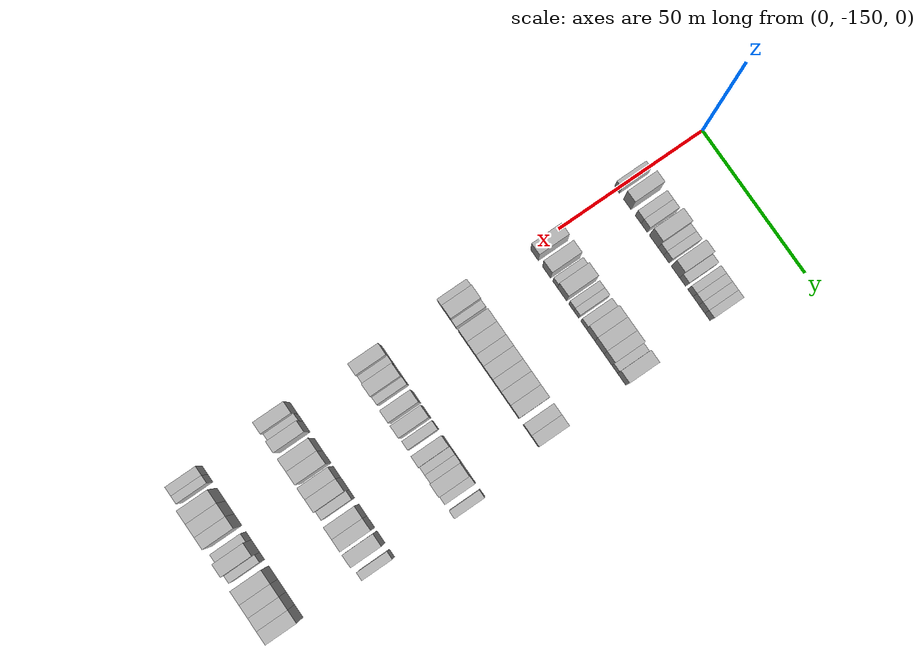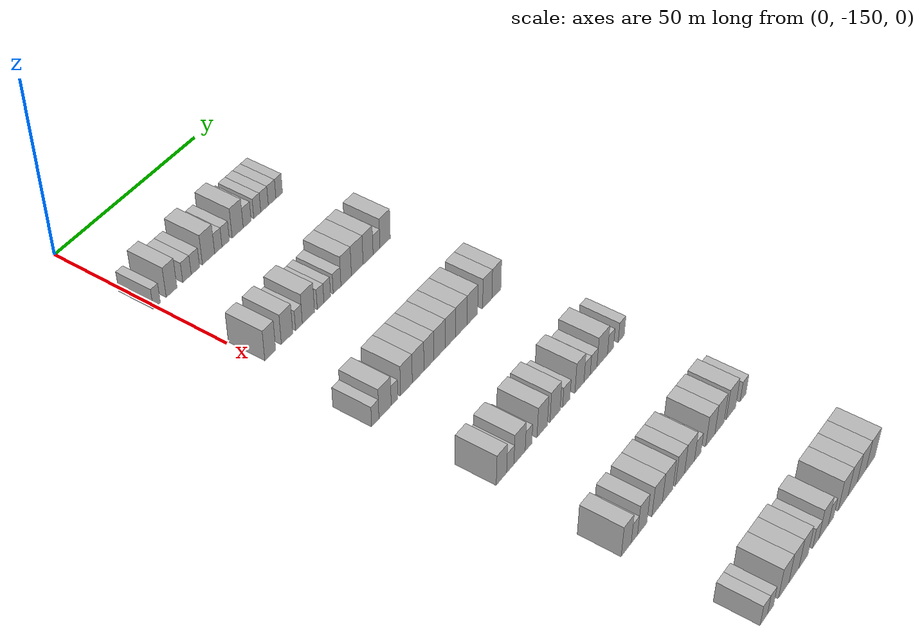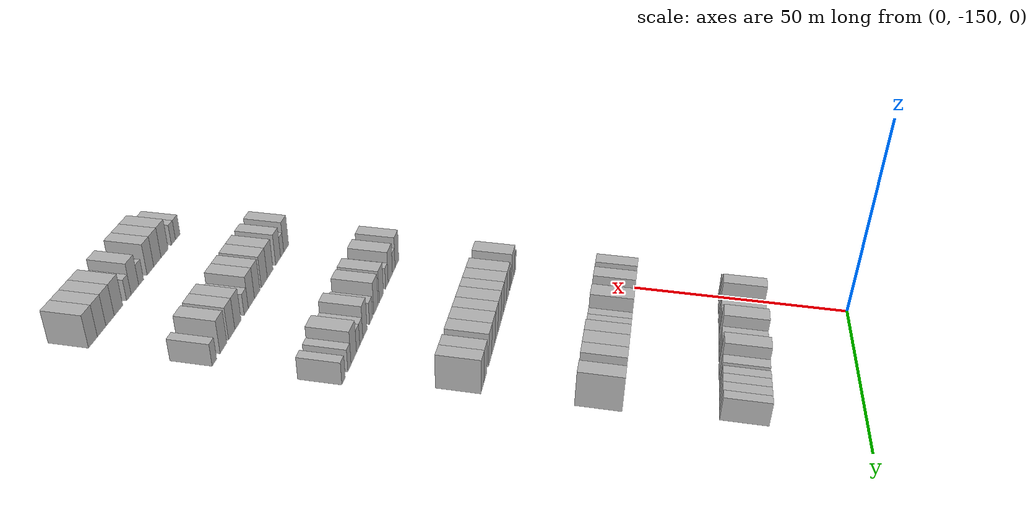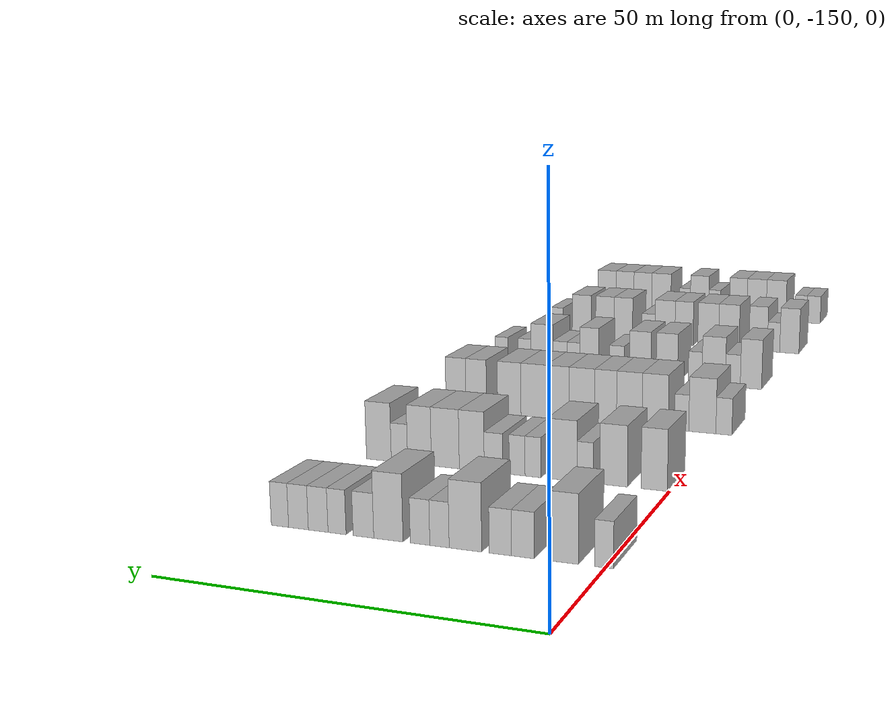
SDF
<sdf version="1.6">
 <world name="default">
  <model name="building_72">
   <static>1</static>
   <pose>25.0000 -149.7639 0 0.000000 0.000000 0.000000</pose>
   <link name="link">
    <pose>0 0 3.00 0 0 0</pose>
    <collision name="collision"><geometry><box><size>10.0000 2.4107 6.0000</size></box></geometry></collision>
    <visual name="visual">
     <cast_shadows>0</cast_shadows>
     <geometry><box><size>10.0000 2.4107 6.0000</size></box></geometry>
     <material>
      <script>
       <uri>model://HANNAS_wall/materials/scripts</uri>
       <uri>model://HANNAS_wall/materials/textures</uri>
       <name>vrc/HANNAS_wall</name>
      </script>
     </material>
    </visual>
   </link>
  </model>
  <model name="building_73">
   <static>1</static>
   <pose>25.0000 -144.6903 0 0.000000 0.000000 0.000000</pose>
   <link name="link">
    <pose>0 0 4.50 0 0 0</pose>
    <collision name="collision"><geometry><box><size>10.0000 3.7367 9.0000</size></box></geometry></collision>
    <visual name="visual">
     <cast_shadows>0</cast_shadows>
     <geometry><box><size>10.0000 3.7367 9.0000</size></box></geometry>
     <material>
      <script>
       <uri>model://HANNAS_wall/materials/scripts</uri>
       <uri>model://HANNAS_wall/materials/textures</uri>
       <name>vrc/HANNAS_wall</name>
      </script>
     </material>
    </visual>
   </link>
  </model>
  <model name="building_74">
   <static>1</static>
   <pose>25.0000 -139.3331 0 0.000000 0.000000 0.000000</pose>
   <link name="link">
    <pose>0 0 3.00 0 0 0</pose>
    <collision name="collision"><geometry><box><size>10.0000 2.9777 6.0000</size></box></geometry></collision>
    <visual name="visual">
     <cast_shadows>0</cast_shadows>
     <geometry><box><size>10.0000 2.9777 6.0000</size></box></geometry>
     <material>
      <script>
       <uri>model://HANNAS_wall/materials/scripts</uri>
       <uri>model://HANNAS_wall/materials/textures</uri>
       <name>vrc/HANNAS_wall</name>
      </script>
     </material>
    </visual>
   </link>
  </model>
  <model name="building_75">
   <static>1</static>
   <pose>25.0000 -136.3701 0 0.000000 0.000000 0.000000</pose>
   <link name="link">
    <pose>0 0 3.00 0 0 0</pose>
    <collision name="collision"><geometry><box><size>10.0000 2.9482 6.0000</size></box></geometry></collision>
    <visual name="visual">
     <cast_shadows>0</cast_shadows>
     <geometry><box><size>10.0000 2.9482 6.0000</size></box></geometry>
     <material>
      <script>
       <uri>model://HANNAS_wall/materials/scripts</uri>
       <uri>model://HANNAS_wall/materials/textures</uri>
       <name>vrc/HANNAS_wall</name>
      </script>
     </material>
    </visual>
   </link>
  </model>
  <model name="building_76">
   <static>1</static>
   <pose>25.0000 -131.7027 0 0.000000 0.000000 0.000000</pose>
   <link name="link">
    <pose>0 0 4.50 0 0 0</pose>
    <collision name="collision"><geometry><box><size>10.0000 4.3865 9.0000</size></box></geometry></collision>
    <visual name="visual">
     <cast_shadows>0</cast_shadows>
     <geometry><box><size>10.0000 4.3865 9.0000</size></box></geometry>
     <material>
      <script>
       <uri>model://HANNAS_wall/materials/scripts</uri>
       <uri>model://HANNAS_wall/materials/textures</uri>
       <name>vrc/HANNAS_wall</name>
      </script>
     </material>
    </visual>
   </link>
  </model>
  <model name="building_77">
   <static>1</static>
   <pose>25.0000 -128.1891 0 0.000000 0.000000 0.000000</pose>
   <link name="link">
    <pose>0 0 3.00 0 0 0</pose>
    <collision name="collision"><geometry><box><size>10.0000 2.6407 6.0000</size></box></geometry></collision>
    <visual name="visual">
     <cast_shadows>0</cast_shadows>
     <geometry><box><size>10.0000 2.6407 6.0000</size></box></geometry>
     <material>
      <script>
       <uri>model://HANNAS_wall/materials/scripts</uri>
       <uri>model://HANNAS_wall/materials/textures</uri>
       <name>vrc/HANNAS_wall</name>
      </script>
     </material>
    </visual>
   </link>
  </model>
  <model name="building_78">
   <static>1</static>
   <pose>25.0000 -125.5254 0 0.000000 0.000000 0.000000</pose>
   <link name="link">
    <pose>0 0 3.00 0 0 0</pose>
    <collision name="collision"><geometry><box><size>10.0000 2.6868 6.0000</size></box></geometry></collision>
    <visual name="visual">
     <cast_shadows>0</cast_shadows>
     <geometry><box><size>10.0000 2.6868 6.0000</size></box></geometry>
     <material>
      <script>
       <uri>model://HANNAS_wall/materials/scripts</uri>
       <uri>model://HANNAS_wall/materials/textures</uri>
       <name>vrc/HANNAS_wall</name>
      </script>
     </material>
    </visual>
   </link>
  </model>
  <model name="building_79">
   <static>1</static>
   <pose>25.0000 -121.1328 0 0.000000 0.000000 0.000000</pose>
   <link name="link">
    <pose>0 0 4.50 0 0 0</pose>
    <collision name="collision"><geometry><box><size>10.0000 4.0984 9.0000</size></box></geometry></collision>
    <visual name="visual">
     <cast_shadows>0</cast_shadows>
     <geometry><box><size>10.0000 4.0984 9.0000</size></box></geometry>
     <material>
      <script>
       <uri>model://HANNAS_wall/materials/scripts</uri>
       <uri>model://HANNAS_wall/materials/textures</uri>
       <name>vrc/HANNAS_wall</name>
      </script>
     </material>
    </visual>
   </link>
  </model>
  <model name="building_80">
   <static>1</static>
   <pose>25.0000 -117.6221 0 0.000000 0.000000 0.000000</pose>
   <link name="link">
    <pose>0 0 3.00 0 0 0</pose>
    <collision name="collision"><geometry><box><size>10.0000 2.9230 6.0000</size></box></geometry></collision>
    <visual name="visual">
     <cast_shadows>0</cast_shadows>
     <geometry><box><size>10.0000 2.9230 6.0000</size></box></geometry>
     <material>
      <script>
       <uri>model://HANNAS_wall/materials/scripts</uri>
       <uri>model://HANNAS_wall/materials/textures</uri>
       <name>vrc/HANNAS_wall</name>
      </script>
     </material>
    </visual>
   </link>
  </model>
  <model name="building_81">
   <static>1</static>
   <pose>25.0000 -113.8651 0 0.000000 0.000000 0.000000</pose>
   <link name="link">
    <pose>0 0 3.00 0 0 0</pose>
    <collision name="collision"><geometry><box><size>10.0000 2.5910 6.0000</size></box></geometry></collision>
    <visual name="visual">
     <cast_shadows>0</cast_shadows>
     <geometry><box><size>10.0000 2.5910 6.0000</size></box></geometry>
     <material>
      <script>
       <uri>model://HANNAS_wall/materials/scripts</uri>
       <uri>model://HANNAS_wall/materials/textures</uri>
       <name>vrc/HANNAS_wall</name>
      </script>
     </material>
    </visual>
   </link>
  </model>
  <model name="building_82">
   <static>1</static>
   <pose>25.0000 -111.1434 0 0.000000 0.000000 0.000000</pose>
   <link name="link">
    <pose>0 0 3.00 0 0 0</pose>
    <collision name="collision"><geometry><box><size>10.0000 2.8523 6.0000</size></box></geometry></collision>
    <visual name="visual">
     <cast_shadows>0</cast_shadows>
     <geometry><box><size>10.0000 2.8523 6.0000</size></box></geometry>
     <material>
      <script>
       <uri>model://HANNAS_wall/materials/scripts</uri>
       <uri>model://HANNAS_wall/materials/textures</uri>
       <name>vrc/HANNAS_wall</name>
      </script>
     </material>
    </visual>
   </link>
  </model>
  <model name="building_83">
   <static>1</static>
   <pose>25.0000 -108.2769 0 0.000000 0.000000 0.000000</pose>
   <link name="link">
    <pose>0 0 3.00 0 0 0</pose>
    <collision name="collision"><geometry><box><size>10.0000 2.8808 6.0000</size></box></geometry></collision>
    <visual name="visual">
     <cast_shadows>0</cast_shadows>
     <geometry><box><size>10.0000 2.8808 6.0000</size></box></geometry>
     <material>
      <script>
       <uri>model://HANNAS_wall/materials/scripts</uri>
       <uri>model://HANNAS_wall/materials/textures</uri>
       <name>vrc/HANNAS_wall</name>
      </script>
     </material>
    </visual>
   </link>
  </model>
  <model name="building_84">
   <static>1</static>
   <pose>25.0000 -105.5612 0 0.000000 0.000000 0.000000</pose>
   <link name="link">
    <pose>0 0 3.00 0 0 0</pose>
    <collision name="collision"><geometry><box><size>10.0000 2.5506 6.0000</size></box></geometry></collision>
    <visual name="visual">
     <cast_shadows>0</cast_shadows>
     <geometry><box><size>10.0000 2.5506 6.0000</size></box></geometry>
     <material>
      <script>
       <uri>model://HANNAS_wall/materials/scripts</uri>
       <uri>model://HANNAS_wall/materials/textures</uri>
       <name>vrc/HANNAS_wall</name>
      </script>
     </material>
    </visual>
   </link>
  </model>
  <model name="building_293">
   <static>1</static>
   <pose>55.0000 -147.7000 0 0.000000 0.000000 0.000000</pose>
   <link name="link">
    <pose>0 0 4.50 0 0 0</pose>
    <collision name="collision"><geometry><box><size>10.0000 3.8156 9.0000</size></box></geometry></collision>
    <visual name="visual">
     <cast_shadows>0</cast_shadows>
     <geometry><box><size>10.0000 3.8156 9.0000</size></box></geometry>
     <material>
      <script>
       <uri>model://HANNAS_wall/materials/scripts</uri>
       <uri>model://HANNAS_wall/materials/textures</uri>
       <name>vrc/HANNAS_wall</name>
      </script>
     </material>
    </visual>
   </link>
  </model>
  <model name="building_294">
   <static>1</static>
   <pose>55.0000 -141.7543 0 0.000000 0.000000 0.000000</pose>
   <link name="link">
    <pose>0 0 4.50 0 0 0</pose>
    <collision name="collision"><geometry><box><size>10.0000 4.0759 9.0000</size></box></geometry></collision>
    <visual name="visual">
     <cast_shadows>0</cast_shadows>
     <geometry><box><size>10.0000 4.0759 9.0000</size></box></geometry>
     <material>
      <script>
       <uri>model://HANNAS_wall/materials/scripts</uri>
       <uri>model://HANNAS_wall/materials/textures</uri>
       <name>vrc/HANNAS_wall</name>
      </script>
     </material>
    </visual>
   </link>
  </model>
  <model name="building_295">
   <static>1</static>
   <pose>55.0000 -137.4959 0 0.000000 0.000000 0.000000</pose>
   <link name="link">
    <pose>0 0 3.00 0 0 0</pose>
    <collision name="collision"><geometry><box><size>10.0000 2.4409 6.0000</size></box></geometry></collision>
    <visual name="visual">
     <cast_shadows>0</cast_shadows>
     <geometry><box><size>10.0000 2.4409 6.0000</size></box></geometry>
     <material>
      <script>
       <uri>model://HANNAS_wall/materials/scripts</uri>
       <uri>model://HANNAS_wall/materials/textures</uri>
       <name>vrc/HANNAS_wall</name>
      </script>
     </material>
    </visual>
   </link>
  </model>
  <model name="building_296">
   <static>1</static>
   <pose>55.0000 -134.0514 0 0.000000 0.000000 0.000000</pose>
   <link name="link">
    <pose>0 0 4.50 0 0 0</pose>
    <collision name="collision"><geometry><box><size>10.0000 4.4480 9.0000</size></box></geometry></collision>
    <visual name="visual">
     <cast_shadows>0</cast_shadows>
     <geometry><box><size>10.0000 4.4480 9.0000</size></box></geometry>
     <material>
      <script>
       <uri>model://HANNAS_wall/materials/scripts</uri>
       <uri>model://HANNAS_wall/materials/textures</uri>
       <name>vrc/HANNAS_wall</name>
      </script>
     </material>
    </visual>
   </link>
  </model>
  <model name="building_297">
   <static>1</static>
   <pose>55.0000 -129.5975 0 0.000000 0.000000 0.000000</pose>
   <link name="link">
    <pose>0 0 3.00 0 0 0</pose>
    <collision name="collision"><geometry><box><size>10.0000 2.4599 6.0000</size></box></geometry></collision>
    <visual name="visual">
     <cast_shadows>0</cast_shadows>
     <geometry><box><size>10.0000 2.4599 6.0000</size></box></geometry>
     <material>
      <script>
       <uri>model://HANNAS_wall/materials/scripts</uri>
       <uri>model://HANNAS_wall/materials/textures</uri>
       <name>vrc/HANNAS_wall</name>
      </script>
     </material>
    </visual>
   </link>
  </model>
  <model name="building_298">
   <static>1</static>
   <pose>55.0000 -127.1387 0 0.000000 0.000000 0.000000</pose>
   <link name="link">
    <pose>0 0 3.00 0 0 0</pose>
    <collision name="collision"><geometry><box><size>10.0000 2.4577 6.0000</size></box></geometry></collision>
    <visual name="visual">
     <cast_shadows>0</cast_shadows>
     <geometry><box><size>10.0000 2.4577 6.0000</size></box></geometry>
     <material>
      <script>
       <uri>model://HANNAS_wall/materials/scripts</uri>
       <uri>model://HANNAS_wall/materials/textures</uri>
       <name>vrc/HANNAS_wall</name>
      </script>
     </material>
    </visual>
   </link>
  </model>
  <model name="building_299">
   <static>1</static>
   <pose>55.0000 -123.4584 0 0.000000 0.000000 0.000000</pose>
   <link name="link">
    <pose>0 0 3.00 0 0 0</pose>
    <collision name="collision"><geometry><box><size>10.0000 2.9030 6.0000</size></box></geometry></collision>
    <visual name="visual">
     <cast_shadows>0</cast_shadows>
     <geometry><box><size>10.0000 2.9030 6.0000</size></box></geometry>
     <material>
      <script>
       <uri>model://HANNAS_wall/materials/scripts</uri>
       <uri>model://HANNAS_wall/materials/textures</uri>
       <name>vrc/HANNAS_wall</name>
      </script>
     </material>
    </visual>
   </link>
  </model>
  <model name="building_300">
   <static>1</static>
   <pose>55.0000 -120.0324 0 0.000000 0.000000 0.000000</pose>
   <link name="link">
    <pose>0 0 4.50 0 0 0</pose>
    <collision name="collision"><geometry><box><size>10.0000 3.9489 9.0000</size></box></geometry></collision>
    <visual name="visual">
     <cast_shadows>0</cast_shadows>
     <geometry><box><size>10.0000 3.9489 9.0000</size></box></geometry>
     <material>
      <script>
       <uri>model://HANNAS_wall/materials/scripts</uri>
       <uri>model://HANNAS_wall/materials/textures</uri>
       <name>vrc/HANNAS_wall</name>
      </script>
     </material>
    </visual>
   </link>
  </model>
  <model name="building_301">
   <static>1</static>
   <pose>55.0000 -115.8211 0 0.000000 0.000000 0.000000</pose>
   <link name="link">
    <pose>0 0 4.50 0 0 0</pose>
    <collision name="collision"><geometry><box><size>10.0000 4.4736 9.0000</size></box></geometry></collision>
    <visual name="visual">
     <cast_shadows>0</cast_shadows>
     <geometry><box><size>10.0000 4.4736 9.0000</size></box></geometry>
     <material>
      <script>
       <uri>model://HANNAS_wall/materials/scripts</uri>
       <uri>model://HANNAS_wall/materials/textures</uri>
       <name>vrc/HANNAS_wall</name>
      </script>
     </material>
    </visual>
   </link>
  </model>
  <model name="building_302">
   <static>1</static>
   <pose>55.0000 -111.6535 0 0.000000 0.000000 0.000000</pose>
   <link name="link">
    <pose>0 0 4.50 0 0 0</pose>
    <collision name="collision"><geometry><box><size>10.0000 3.8617 9.0000</size></box></geometry></collision>
    <visual name="visual">
     <cast_shadows>0</cast_shadows>
     <geometry><box><size>10.0000 3.8617 9.0000</size></box></geometry>
     <material>
      <script>
       <uri>model://HANNAS_wall/materials/scripts</uri>
       <uri>model://HANNAS_wall/materials/textures</uri>
       <name>vrc/HANNAS_wall</name>
      </script>
     </material>
    </visual>
   </link>
  </model>
  <model name="building_303">
   <static>1</static>
   <pose>55.0000 -108.3858 0 0.000000 0.000000 0.000000</pose>
   <link name="link">
    <pose>0 0 3.00 0 0 0</pose>
    <collision name="collision"><geometry><box><size>10.0000 2.6736 6.0000</size></box></geometry></collision>
    <visual name="visual">
     <cast_shadows>0</cast_shadows>
     <geometry><box><size>10.0000 2.6736 6.0000</size></box></geometry>
     <material>
      <script>
       <uri>model://HANNAS_wall/materials/scripts</uri>
       <uri>model://HANNAS_wall/materials/textures</uri>
       <name>vrc/HANNAS_wall</name>
      </script>
     </material>
    </visual>
   </link>
  </model>
  <model name="building_304">
   <static>1</static>
   <pose>55.0000 -104.9985 0 0.000000 0.000000 0.000000</pose>
   <link name="link">
    <pose>0 0 4.50 0 0 0</pose>
    <collision name="collision"><geometry><box><size>10.0000 4.1012 9.0000</size></box></geometry></collision>
    <visual name="visual">
     <cast_shadows>0</cast_shadows>
     <geometry><box><size>10.0000 4.1012 9.0000</size></box></geometry>
     <material>
      <script>
       <uri>model://HANNAS_wall/materials/scripts</uri>
       <uri>model://HANNAS_wall/materials/textures</uri>
       <name>vrc/HANNAS_wall</name>
      </script>
     </material>
    </visual>
   </link>
  </model>
  <model name="building_517">
   <static>1</static>
   <pose>85.0000 -150.8673 0 0.000000 0.000000 0.000000</pose>
   <link name="link">
    <pose>0 0 3.00 0 0 0</pose>
    <collision name="collision"><geometry><box><size>10.0000 2.6076 6.0000</size></box></geometry></collision>
    <visual name="visual">
     <cast_shadows>0</cast_shadows>
     <geometry><box><size>10.0000 2.6076 6.0000</size></box></geometry>
     <material>
      <script>
       <uri>model://HANNAS_wall/materials/scripts</uri>
       <uri>model://HANNAS_wall/materials/textures</uri>
       <name>vrc/HANNAS_wall</name>
      </script>
     </material>
    </visual>
   </link>
  </model>
  <model name="building_518">
   <static>1</static>
   <pose>85.0000 -147.3425 0 0.000000 0.000000 0.000000</pose>
   <link name="link">
    <pose>0 0 4.50 0 0 0</pose>
    <collision name="collision"><geometry><box><size>10.0000 4.4422 9.0000</size></box></geometry></collision>
    <visual name="visual">
     <cast_shadows>0</cast_shadows>
     <geometry><box><size>10.0000 4.4422 9.0000</size></box></geometry>
     <material>
      <script>
       <uri>model://HANNAS_wall/materials/scripts</uri>
       <uri>model://HANNAS_wall/materials/textures</uri>
       <name>vrc/HANNAS_wall</name>
      </script>
     </material>
    </visual>
   </link>
  </model>
  <model name="building_519">
   <static>1</static>
   <pose>85.0000 -143.9200 0 0.000000 0.000000 0.000000</pose>
   <link name="link">
    <pose>0 0 3.00 0 0 0</pose>
    <collision name="collision"><geometry><box><size>10.0000 2.4027 6.0000</size></box></geometry></collision>
    <visual name="visual">
     <cast_shadows>0</cast_shadows>
     <geometry><box><size>10.0000 2.4027 6.0000</size></box></geometry>
     <material>
      <script>
       <uri>model://HANNAS_wall/materials/scripts</uri>
       <uri>model://HANNAS_wall/materials/textures</uri>
       <name>vrc/HANNAS_wall</name>
      </script>
     </material>
    </visual>
   </link>
  </model>
  <model name="building_520">
   <static>1</static>
   <pose>85.0000 -139.5436 0 0.000000 0.000000 0.000000</pose>
   <link name="link">
    <pose>0 0 4.50 0 0 0</pose>
    <collision name="collision"><geometry><box><size>10.0000 4.3501 9.0000</size></box></geometry></collision>
    <visual name="visual">
     <cast_shadows>0</cast_shadows>
     <geometry><box><size>10.0000 4.3501 9.0000</size></box></geometry>
     <material>
      <script>
       <uri>model://HANNAS_wall/materials/scripts</uri>
       <uri>model://HANNAS_wall/materials/textures</uri>
       <name>vrc/HANNAS_wall</name>
      </script>
     </material>
    </visual>
   </link>
  </model>
  <model name="building_521">
   <static>1</static>
   <pose>85.0000 -135.1926 0 0.000000 0.000000 0.000000</pose>
   <link name="link">
    <pose>0 0 4.50 0 0 0</pose>
    <collision name="collision"><geometry><box><size>10.0000 4.3519 9.0000</size></box></geometry></collision>
    <visual name="visual">
     <cast_shadows>0</cast_shadows>
     <geometry><box><size>10.0000 4.3519 9.0000</size></box></geometry>
     <material>
      <script>
       <uri>model://HANNAS_wall/materials/scripts</uri>
       <uri>model://HANNAS_wall/materials/textures</uri>
       <name>vrc/HANNAS_wall</name>
      </script>
     </material>
    </visual>
   </link>
  </model>
  <model name="building_522">
   <static>1</static>
   <pose>85.0000 -131.1651 0 0.000000 0.000000 0.000000</pose>
   <link name="link">
    <pose>0 0 4.50 0 0 0</pose>
    <collision name="collision"><geometry><box><size>10.0000 3.7031 9.0000</size></box></geometry></collision>
    <visual name="visual">
     <cast_shadows>0</cast_shadows>
     <geometry><box><size>10.0000 3.7031 9.0000</size></box></geometry>
     <material>
      <script>
       <uri>model://HANNAS_wall/materials/scripts</uri>
       <uri>model://HANNAS_wall/materials/textures</uri>
       <name>vrc/HANNAS_wall</name>
      </script>
     </material>
    </visual>
   </link>
  </model>
  <model name="building_523">
   <static>1</static>
   <pose>85.0000 -127.1025 0 0.000000 0.000000 0.000000</pose>
   <link name="link">
    <pose>0 0 4.50 0 0 0</pose>
    <collision name="collision"><geometry><box><size>10.0000 4.4221 9.0000</size></box></geometry></collision>
    <visual name="visual">
     <cast_shadows>0</cast_shadows>
     <geometry><box><size>10.0000 4.4221 9.0000</size></box></geometry>
     <material>
      <script>
       <uri>model://HANNAS_wall/materials/scripts</uri>
       <uri>model://HANNAS_wall/materials/textures</uri>
       <name>vrc/HANNAS_wall</name>
      </script>
     </material>
    </visual>
   </link>
  </model>
  <model name="building_524">
   <static>1</static>
   <pose>85.0000 -122.8876 0 0.000000 0.000000 0.000000</pose>
   <link name="link">
    <pose>0 0 4.50 0 0 0</pose>
    <collision name="collision"><geometry><box><size>10.0000 4.0076 9.0000</size></box></geometry></collision>
    <visual name="visual">
     <cast_shadows>0</cast_shadows>
     <geometry><box><size>10.0000 4.0076 9.0000</size></box></geometry>
     <material>
      <script>
       <uri>model://HANNAS_wall/materials/scripts</uri>
       <uri>model://HANNAS_wall/materials/textures</uri>
       <name>vrc/HANNAS_wall</name>
      </script>
     </material>
    </visual>
   </link>
  </model>
  <model name="building_525">
   <static>1</static>
   <pose>85.0000 -118.6383 0 0.000000 0.000000 0.000000</pose>
   <link name="link">
    <pose>0 0 4.50 0 0 0</pose>
    <collision name="collision"><geometry><box><size>10.0000 4.4909 9.0000</size></box></geometry></collision>
    <visual name="visual">
     <cast_shadows>0</cast_shadows>
     <geometry><box><size>10.0000 4.4909 9.0000</size></box></geometry>
     <material>
      <script>
       <uri>model://HANNAS_wall/materials/scripts</uri>
       <uri>model://HANNAS_wall/materials/textures</uri>
       <name>vrc/HANNAS_wall</name>
      </script>
     </material>
    </visual>
   </link>
  </model>
  <model name="building_526">
   <static>1</static>
   <pose>85.0000 -114.3014 0 0.000000 0.000000 0.000000</pose>
   <link name="link">
    <pose>0 0 4.50 0 0 0</pose>
    <collision name="collision"><geometry><box><size>10.0000 4.1829 9.0000</size></box></geometry></collision>
    <visual name="visual">
     <cast_shadows>0</cast_shadows>
     <geometry><box><size>10.0000 4.1829 9.0000</size></box></geometry>
     <material>
      <script>
       <uri>model://HANNAS_wall/materials/scripts</uri>
       <uri>model://HANNAS_wall/materials/textures</uri>
       <name>vrc/HANNAS_wall</name>
      </script>
     </material>
    </visual>
   </link>
  </model>
  <model name="building_527">
   <static>1</static>
   <pose>85.0000 -108.3380 0 0.000000 0.000000 0.000000</pose>
   <link name="link">
    <pose>0 0 4.50 0 0 0</pose>
    <collision name="collision"><geometry><box><size>10.0000 3.7440 9.0000</size></box></geometry></collision>
    <visual name="visual">
     <cast_shadows>0</cast_shadows>
     <geometry><box><size>10.0000 3.7440 9.0000</size></box></geometry>
     <material>
      <script>
       <uri>model://HANNAS_wall/materials/scripts</uri>
       <uri>model://HANNAS_wall/materials/textures</uri>
       <name>vrc/HANNAS_wall</name>
      </script>
     </material>
    </visual>
   </link>
  </model>
  <model name="building_528">
   <static>1</static>
   <pose>85.0000 -104.6358 0 0.000000 0.000000 0.000000</pose>
   <link name="link">
    <pose>0 0 4.50 0 0 0</pose>
    <collision name="collision"><geometry><box><size>10.0000 3.6603 9.0000</size></box></geometry></collision>
    <visual name="visual">
     <cast_shadows>0</cast_shadows>
     <geometry><box><size>10.0000 3.6603 9.0000</size></box></geometry>
     <material>
      <script>
       <uri>model://HANNAS_wall/materials/scripts</uri>
       <uri>model://HANNAS_wall/materials/textures</uri>
       <name>vrc/HANNAS_wall</name>
      </script>
     </material>
    </visual>
   </link>
  </model>
  <model name="building_749">
   <static>1</static>
   <pose>115.0000 -148.9891 0 0.000000 0.000000 0.000000</pose>
   <link name="link">
    <pose>0 0 4.50 0 0 0</pose>
    <collision name="collision"><geometry><box><size>10.0000 3.8682 9.0000</size></box></geometry></collision>
    <visual name="visual">
     <cast_shadows>0</cast_shadows>
     <geometry><box><size>10.0000 3.8682 9.0000</size></box></geometry>
     <material>
      <script>
       <uri>model://HANNAS_wall/materials/scripts</uri>
       <uri>model://HANNAS_wall/materials/textures</uri>
       <name>vrc/HANNAS_wall</name>
      </script>
     </material>
    </visual>
   </link>
  </model>
  <model name="building_750">
   <static>1</static>
   <pose>115.0000 -145.6860 0 0.000000 0.000000 0.000000</pose>
   <link name="link">
    <pose>0 0 3.00 0 0 0</pose>
    <collision name="collision"><geometry><box><size>10.0000 2.7381 6.0000</size></box></geometry></collision>
    <visual name="visual">
     <cast_shadows>0</cast_shadows>
     <geometry><box><size>10.0000 2.7381 6.0000</size></box></geometry>
     <material>
      <script>
       <uri>model://HANNAS_wall/materials/scripts</uri>
       <uri>model://HANNAS_wall/materials/textures</uri>
       <name>vrc/HANNAS_wall</name>
      </script>
     </material>
    </visual>
   </link>
  </model>
  <model name="building_751">
   <static>1</static>
   <pose>115.0000 -142.1702 0 0.000000 0.000000 0.000000</pose>
   <link name="link">
    <pose>0 0 4.50 0 0 0</pose>
    <collision name="collision"><geometry><box><size>10.0000 4.2934 9.0000</size></box></geometry></collision>
    <visual name="visual">
     <cast_shadows>0</cast_shadows>
     <geometry><box><size>10.0000 4.2934 9.0000</size></box></geometry>
     <material>
      <script>
       <uri>model://HANNAS_wall/materials/scripts</uri>
       <uri>model://HANNAS_wall/materials/textures</uri>
       <name>vrc/HANNAS_wall</name>
      </script>
     </material>
    </visual>
   </link>
  </model>
  <model name="building_752">
   <static>1</static>
   <pose>115.0000 -138.7420 0 0.000000 0.000000 0.000000</pose>
   <link name="link">
    <pose>0 0 3.00 0 0 0</pose>
    <collision name="collision"><geometry><box><size>10.0000 2.5631 6.0000</size></box></geometry></collision>
    <visual name="visual">
     <cast_shadows>0</cast_shadows>
     <geometry><box><size>10.0000 2.5631 6.0000</size></box></geometry>
     <material>
      <script>
       <uri>model://HANNAS_wall/materials/scripts</uri>
       <uri>model://HANNAS_wall/materials/textures</uri>
       <name>vrc/HANNAS_wall</name>
      </script>
     </material>
    </visual>
   </link>
  </model>
  <model name="building_753">
   <static>1</static>
   <pose>115.0000 -133.4391 0 0.000000 0.000000 0.000000</pose>
   <link name="link">
    <pose>0 0 4.50 0 0 0</pose>
    <collision name="collision"><geometry><box><size>10.0000 4.0427 9.0000</size></box></geometry></collision>
    <visual name="visual">
     <cast_shadows>0</cast_shadows>
     <geometry><box><size>10.0000 4.0427 9.0000</size></box></geometry>
     <material>
      <script>
       <uri>model://HANNAS_wall/materials/scripts</uri>
       <uri>model://HANNAS_wall/materials/textures</uri>
       <name>vrc/HANNAS_wall</name>
      </script>
     </material>
    </visual>
   </link>
  </model>
  <model name="building_754">
   <static>1</static>
   <pose>115.0000 -128.4001 0 0.000000 0.000000 0.000000</pose>
   <link name="link">
    <pose>0 0 4.50 0 0 0</pose>
    <collision name="collision"><geometry><box><size>10.0000 4.0355 9.0000</size></box></geometry></collision>
    <visual name="visual">
     <cast_shadows>0</cast_shadows>
     <geometry><box><size>10.0000 4.0355 9.0000</size></box></geometry>
     <material>
      <script>
       <uri>model://HANNAS_wall/materials/scripts</uri>
       <uri>model://HANNAS_wall/materials/textures</uri>
       <name>vrc/HANNAS_wall</name>
      </script>
     </material>
    </visual>
   </link>
  </model>
  <model name="building_755">
   <static>1</static>
   <pose>115.0000 -123.9106 0 0.000000 0.000000 0.000000</pose>
   <link name="link">
    <pose>0 0 3.00 0 0 0</pose>
    <collision name="collision"><geometry><box><size>10.0000 2.9434 6.0000</size></box></geometry></collision>
    <visual name="visual">
     <cast_shadows>0</cast_shadows>
     <geometry><box><size>10.0000 2.9434 6.0000</size></box></geometry>
     <material>
      <script>
       <uri>model://HANNAS_wall/materials/scripts</uri>
       <uri>model://HANNAS_wall/materials/textures</uri>
       <name>vrc/HANNAS_wall</name>
      </script>
     </material>
    </visual>
   </link>
  </model>
  <model name="building_756">
   <static>1</static>
   <pose>115.0000 -118.6074 0 0.000000 0.000000 0.000000</pose>
   <link name="link">
    <pose>0 0 4.50 0 0 0</pose>
    <collision name="collision"><geometry><box><size>10.0000 3.6631 9.0000</size></box></geometry></collision>
    <visual name="visual">
     <cast_shadows>0</cast_shadows>
     <geometry><box><size>10.0000 3.6631 9.0000</size></box></geometry>
     <material>
      <script>
       <uri>model://HANNAS_wall/materials/scripts</uri>
       <uri>model://HANNAS_wall/materials/textures</uri>
       <name>vrc/HANNAS_wall</name>
      </script>
     </material>
    </visual>
   </link>
  </model>
  <model name="building_757">
   <static>1</static>
   <pose>115.0000 -115.4781 0 0.000000 0.000000 0.000000</pose>
   <link name="link">
    <pose>0 0 3.00 0 0 0</pose>
    <collision name="collision"><geometry><box><size>10.0000 2.5954 6.0000</size></box></geometry></collision>
    <visual name="visual">
     <cast_shadows>0</cast_shadows>
     <geometry><box><size>10.0000 2.5954 6.0000</size></box></geometry>
     <material>
      <script>
       <uri>model://HANNAS_wall/materials/scripts</uri>
       <uri>model://HANNAS_wall/materials/textures</uri>
       <name>vrc/HANNAS_wall</name>
      </script>
     </material>
    </visual>
   </link>
  </model>
  <model name="building_758">
   <static>1</static>
   <pose>115.0000 -112.8031 0 0.000000 0.000000 0.000000</pose>
   <link name="link">
    <pose>0 0 3.00 0 0 0</pose>
    <collision name="collision"><geometry><box><size>10.0000 2.7546 6.0000</size></box></geometry></collision>
    <visual name="visual">
     <cast_shadows>0</cast_shadows>
     <geometry><box><size>10.0000 2.7546 6.0000</size></box></geometry>
     <material>
      <script>
       <uri>model://HANNAS_wall/materials/scripts</uri>
       <uri>model://HANNAS_wall/materials/textures</uri>
       <name>vrc/HANNAS_wall</name>
      </script>
     </material>
    </visual>
   </link>
  </model>
  <model name="building_759">
   <static>1</static>
   <pose>115.0000 -109.2133 0 0.000000 0.000000 0.000000</pose>
   <link name="link">
    <pose>0 0 4.50 0 0 0</pose>
    <collision name="collision"><geometry><box><size>10.0000 4.4249 9.0000</size></box></geometry></collision>
    <visual name="visual">
     <cast_shadows>0</cast_shadows>
     <geometry><box><size>10.0000 4.4249 9.0000</size></box></geometry>
     <material>
      <script>
       <uri>model://HANNAS_wall/materials/scripts</uri>
       <uri>model://HANNAS_wall/materials/textures</uri>
       <name>vrc/HANNAS_wall</name>
      </script>
     </material>
    </visual>
   </link>
  </model>
  <model name="building_760">
   <static>1</static>
   <pose>115.0000 -105.7284 0 0.000000 0.000000 0.000000</pose>
   <link name="link">
    <pose>0 0 3.00 0 0 0</pose>
    <collision name="collision"><geometry><box><size>10.0000 2.5448 6.0000</size></box></geometry></collision>
    <visual name="visual">
     <cast_shadows>0</cast_shadows>
     <geometry><box><size>10.0000 2.5448 6.0000</size></box></geometry>
     <material>
      <script>
       <uri>model://HANNAS_wall/materials/scripts</uri>
       <uri>model://HANNAS_wall/materials/textures</uri>
       <name>vrc/HANNAS_wall</name>
      </script>
     </material>
    </visual>
   </link>
  </model>
  <model name="building_761">
   <static>1</static>
   <pose>115.0000 -101.1436 0 0.000000 0.000000 0.000000</pose>
   <link name="link">
    <pose>0 0 3.00 0 0 0</pose>
    <collision name="collision"><geometry><box><size>10.0000 2.6249 6.0000</size></box></geometry></collision>
    <visual name="visual">
     <cast_shadows>0</cast_shadows>
     <geometry><box><size>10.0000 2.6249 6.0000</size></box></geometry>
     <material>
      <script>
       <uri>model://HANNAS_wall/materials/scripts</uri>
       <uri>model://HANNAS_wall/materials/textures</uri>
       <name>vrc/HANNAS_wall</name>
      </script>
     </material>
    </visual>
   </link>
  </model>
  <model name="building_973">
   <static>1</static>
   <pose>145.0000 -150.4763 0 0.000000 0.000000 0.000000</pose>
   <link name="link">
    <pose>0 0 4.50 0 0 0</pose>
    <collision name="collision"><geometry><box><size>10.0000 3.8403 9.0000</size></box></geometry></collision>
    <visual name="visual">
     <cast_shadows>0</cast_shadows>
     <geometry><box><size>10.0000 3.8403 9.0000</size></box></geometry>
     <material>
      <script>
       <uri>model://HANNAS_wall/materials/scripts</uri>
       <uri>model://HANNAS_wall/materials/textures</uri>
       <name>vrc/HANNAS_wall</name>
      </script>
     </material>
    </visual>
   </link>
  </model>
  <model name="building_974">
   <static>1</static>
   <pose>145.0000 -147.3140 0 0.000000 0.000000 0.000000</pose>
   <link name="link">
    <pose>0 0 3.00 0 0 0</pose>
    <collision name="collision"><geometry><box><size>10.0000 2.4842 6.0000</size></box></geometry></collision>
    <visual name="visual">
     <cast_shadows>0</cast_shadows>
     <geometry><box><size>10.0000 2.4842 6.0000</size></box></geometry>
     <material>
      <script>
       <uri>model://HANNAS_wall/materials/scripts</uri>
       <uri>model://HANNAS_wall/materials/textures</uri>
       <name>vrc/HANNAS_wall</name>
      </script>
     </material>
    </visual>
   </link>
  </model>
  <model name="building_975">
   <static>1</static>
   <pose>145.0000 -144.2127 0 0.000000 0.000000 0.000000</pose>
   <link name="link">
    <pose>0 0 4.50 0 0 0</pose>
    <collision name="collision"><geometry><box><size>10.0000 3.7185 9.0000</size></box></geometry></collision>
    <visual name="visual">
     <cast_shadows>0</cast_shadows>
     <geometry><box><size>10.0000 3.7185 9.0000</size></box></geometry>
     <material>
      <script>
       <uri>model://HANNAS_wall/materials/scripts</uri>
       <uri>model://HANNAS_wall/materials/textures</uri>
       <name>vrc/HANNAS_wall</name>
      </script>
     </material>
    </visual>
   </link>
  </model>
  <model name="building_976">
   <static>1</static>
   <pose>145.0000 -138.2570 0 0.000000 0.000000 0.000000</pose>
   <link name="link">
    <pose>0 0 4.50 0 0 0</pose>
    <collision name="collision"><geometry><box><size>10.0000 4.1929 9.0000</size></box></geometry></collision>
    <visual name="visual">
     <cast_shadows>0</cast_shadows>
     <geometry><box><size>10.0000 4.1929 9.0000</size></box></geometry>
     <material>
      <script>
       <uri>model://HANNAS_wall/materials/scripts</uri>
       <uri>model://HANNAS_wall/materials/textures</uri>
       <name>vrc/HANNAS_wall</name>
      </script>
     </material>
    </visual>
   </link>
  </model>
  <model name="building_977">
   <static>1</static>
   <pose>145.0000 -134.0113 0 0.000000 0.000000 0.000000</pose>
   <link name="link">
    <pose>0 0 4.50 0 0 0</pose>
    <collision name="collision"><geometry><box><size>10.0000 4.2986 9.0000</size></box></geometry></collision>
    <visual name="visual">
     <cast_shadows>0</cast_shadows>
     <geometry><box><size>10.0000 4.2986 9.0000</size></box></geometry>
     <material>
      <script>
       <uri>model://HANNAS_wall/materials/scripts</uri>
       <uri>model://HANNAS_wall/materials/textures</uri>
       <name>vrc/HANNAS_wall</name>
      </script>
     </material>
    </visual>
   </link>
  </model>
  <model name="building_978">
   <static>1</static>
   <pose>145.0000 -128.9763 0 0.000000 0.000000 0.000000</pose>
   <link name="link">
    <pose>0 0 4.50 0 0 0</pose>
    <collision name="collision"><geometry><box><size>10.0000 3.7714 9.0000</size></box></geometry></collision>
    <visual name="visual">
     <cast_shadows>0</cast_shadows>
     <geometry><box><size>10.0000 3.7714 9.0000</size></box></geometry>
     <material>
      <script>
       <uri>model://HANNAS_wall/materials/scripts</uri>
       <uri>model://HANNAS_wall/materials/textures</uri>
       <name>vrc/HANNAS_wall</name>
      </script>
     </material>
    </visual>
   </link>
  </model>
  <model name="building_979">
   <static>1</static>
   <pose>145.0000 -125.0052 0 0.000000 0.000000 0.000000</pose>
   <link name="link">
    <pose>0 0 4.50 0 0 0</pose>
    <collision name="collision"><geometry><box><size>10.0000 4.1709 9.0000</size></box></geometry></collision>
    <visual name="visual">
     <cast_shadows>0</cast_shadows>
     <geometry><box><size>10.0000 4.1709 9.0000</size></box></geometry>
     <material>
      <script>
       <uri>model://HANNAS_wall/materials/scripts</uri>
       <uri>model://HANNAS_wall/materials/textures</uri>
       <name>vrc/HANNAS_wall</name>
      </script>
     </material>
    </visual>
   </link>
  </model>
  <model name="building_980">
   <static>1</static>
   <pose>145.0000 -121.5278 0 0.000000 0.000000 0.000000</pose>
   <link name="link">
    <pose>0 0 3.00 0 0 0</pose>
    <collision name="collision"><geometry><box><size>10.0000 2.7840 6.0000</size></box></geometry></collision>
    <visual name="visual">
     <cast_shadows>0</cast_shadows>
     <geometry><box><size>10.0000 2.7840 6.0000</size></box></geometry>
     <material>
      <script>
       <uri>model://HANNAS_wall/materials/scripts</uri>
       <uri>model://HANNAS_wall/materials/textures</uri>
       <name>vrc/HANNAS_wall</name>
      </script>
     </material>
    </visual>
   </link>
  </model>
  <model name="building_981">
   <static>1</static>
   <pose>145.0000 -116.1544 0 0.000000 0.000000 0.000000</pose>
   <link name="link">
    <pose>0 0 4.50 0 0 0</pose>
    <collision name="collision"><geometry><box><size>10.0000 3.9628 9.0000</size></box></geometry></collision>
    <visual name="visual">
     <cast_shadows>0</cast_shadows>
     <geometry><box><size>10.0000 3.9628 9.0000</size></box></geometry>
     <material>
      <script>
       <uri>model://HANNAS_wall/materials/scripts</uri>
       <uri>model://HANNAS_wall/materials/textures</uri>
       <name>vrc/HANNAS_wall</name>
      </script>
     </material>
    </visual>
   </link>
  </model>
  <model name="building_982">
   <static>1</static>
   <pose>145.0000 -112.1836 0 0.000000 0.000000 0.000000</pose>
   <link name="link">
    <pose>0 0 4.50 0 0 0</pose>
    <collision name="collision"><geometry><box><size>10.0000 3.9789 9.0000</size></box></geometry></collision>
    <visual name="visual">
     <cast_shadows>0</cast_shadows>
     <geometry><box><size>10.0000 3.9789 9.0000</size></box></geometry>
     <material>
      <script>
       <uri>model://HANNAS_wall/materials/scripts</uri>
       <uri>model://HANNAS_wall/materials/textures</uri>
       <name>vrc/HANNAS_wall</name>
      </script>
     </material>
    </visual>
   </link>
  </model>
  <model name="building_983">
   <static>1</static>
   <pose>145.0000 -107.1316 0 0.000000 0.000000 0.000000</pose>
   <link name="link">
    <pose>0 0 4.50 0 0 0</pose>
    <collision name="collision"><geometry><box><size>10.0000 4.1251 9.0000</size></box></geometry></collision>
    <visual name="visual">
     <cast_shadows>0</cast_shadows>
     <geometry><box><size>10.0000 4.1251 9.0000</size></box></geometry>
     <material>
      <script>
       <uri>model://HANNAS_wall/materials/scripts</uri>
       <uri>model://HANNAS_wall/materials/textures</uri>
       <name>vrc/HANNAS_wall</name>
      </script>
     </material>
    </visual>
   </link>
  </model>
  <model name="building_984">
   <static>1</static>
   <pose>145.0000 -101.7583 0 0.000000 0.000000 0.000000</pose>
   <link name="link">
    <pose>0 0 3.00 0 0 0</pose>
    <collision name="collision"><geometry><box><size>10.0000 2.6213 6.0000</size></box></geometry></collision>
    <visual name="visual">
     <cast_shadows>0</cast_shadows>
     <geometry><box><size>10.0000 2.6213 6.0000</size></box></geometry>
     <material>
      <script>
       <uri>model://HANNAS_wall/materials/scripts</uri>
       <uri>model://HANNAS_wall/materials/textures</uri>
       <name>vrc/HANNAS_wall</name>
      </script>
     </material>
    </visual>
   </link>
  </model>
  <model name="building_1196">
   <static>1</static>
   <pose>175.0000 -150.3203 0 0.000000 0.000000 0.000000</pose>
   <link name="link">
    <pose>0 0 3.00 0 0 0</pose>
    <collision name="collision"><geometry><box><size>10.0000 2.9594 6.0000</size></box></geometry></collision>
    <visual name="visual">
     <cast_shadows>0</cast_shadows>
     <geometry><box><size>10.0000 2.9594 6.0000</size></box></geometry>
     <material>
      <script>
       <uri>model://HANNAS_wall/materials/scripts</uri>
       <uri>model://HANNAS_wall/materials/textures</uri>
       <name>vrc/HANNAS_wall</name>
      </script>
     </material>
    </visual>
   </link>
  </model>
  <model name="building_1197">
   <static>1</static>
   <pose>175.0000 -147.5480 0 0.000000 0.000000 0.000000</pose>
   <link name="link">
    <pose>0 0 3.00 0 0 0</pose>
    <collision name="collision"><geometry><box><size>10.0000 2.5851 6.0000</size></box></geometry></collision>
    <visual name="visual">
     <cast_shadows>0</cast_shadows>
     <geometry><box><size>10.0000 2.5851 6.0000</size></box></geometry>
     <material>
      <script>
       <uri>model://HANNAS_wall/materials/scripts</uri>
       <uri>model://HANNAS_wall/materials/textures</uri>
       <name>vrc/HANNAS_wall</name>
      </script>
     </material>
    </visual>
   </link>
  </model>
  <model name="building_1198">
   <static>1</static>
   <pose>175.0000 -142.0750 0 0.000000 0.000000 0.000000</pose>
   <link name="link">
    <pose>0 0 4.50 0 0 0</pose>
    <collision name="collision"><geometry><box><size>10.0000 4.3609 9.0000</size></box></geometry></collision>
    <visual name="visual">
     <cast_shadows>0</cast_shadows>
     <geometry><box><size>10.0000 4.3609 9.0000</size></box></geometry>
     <material>
      <script>
       <uri>model://HANNAS_wall/materials/scripts</uri>
       <uri>model://HANNAS_wall/materials/textures</uri>
       <name>vrc/HANNAS_wall</name>
      </script>
     </material>
    </visual>
   </link>
  </model>
  <model name="building_1199">
   <static>1</static>
   <pose>175.0000 -137.7367 0 0.000000 0.000000 0.000000</pose>
   <link name="link">
    <pose>0 0 4.50 0 0 0</pose>
    <collision name="collision"><geometry><box><size>10.0000 4.3157 9.0000</size></box></geometry></collision>
    <visual name="visual">
     <cast_shadows>0</cast_shadows>
     <geometry><box><size>10.0000 4.3157 9.0000</size></box></geometry>
     <material>
      <script>
       <uri>model://HANNAS_wall/materials/scripts</uri>
       <uri>model://HANNAS_wall/materials/textures</uri>
       <name>vrc/HANNAS_wall</name>
      </script>
     </material>
    </visual>
   </link>
  </model>
  <model name="building_1200">
   <static>1</static>
   <pose>175.0000 -133.6240 0 0.000000 0.000000 0.000000</pose>
   <link name="link">
    <pose>0 0 4.50 0 0 0</pose>
    <collision name="collision"><geometry><box><size>10.0000 3.9097 9.0000</size></box></geometry></collision>
    <visual name="visual">
     <cast_shadows>0</cast_shadows>
     <geometry><box><size>10.0000 3.9097 9.0000</size></box></geometry>
     <material>
      <script>
       <uri>model://HANNAS_wall/materials/scripts</uri>
       <uri>model://HANNAS_wall/materials/textures</uri>
       <name>vrc/HANNAS_wall</name>
      </script>
     </material>
    </visual>
   </link>
  </model>
  <model name="building_1201">
   <static>1</static>
   <pose>175.0000 -128.3198 0 0.000000 0.000000 0.000000</pose>
   <link name="link">
    <pose>0 0 3.00 0 0 0</pose>
    <collision name="collision"><geometry><box><size>10.0000 2.6987 6.0000</size></box></geometry></collision>
    <visual name="visual">
     <cast_shadows>0</cast_shadows>
     <geometry><box><size>10.0000 2.6987 6.0000</size></box></geometry>
     <material>
      <script>
       <uri>model://HANNAS_wall/materials/scripts</uri>
       <uri>model://HANNAS_wall/materials/textures</uri>
       <name>vrc/HANNAS_wall</name>
      </script>
     </material>
    </visual>
   </link>
  </model>
  <model name="building_1202">
   <static>1</static>
   <pose>175.0000 -124.8680 0 0.000000 0.000000 0.000000</pose>
   <link name="link">
    <pose>0 0 4.50 0 0 0</pose>
    <collision name="collision"><geometry><box><size>10.0000 4.2050 9.0000</size></box></geometry></collision>
    <visual name="visual">
     <cast_shadows>0</cast_shadows>
     <geometry><box><size>10.0000 4.2050 9.0000</size></box></geometry>
     <material>
      <script>
       <uri>model://HANNAS_wall/materials/scripts</uri>
       <uri>model://HANNAS_wall/materials/textures</uri>
       <name>vrc/HANNAS_wall</name>
      </script>
     </material>
    </visual>
   </link>
  </model>
  <model name="building_1203">
   <static>1</static>
   <pose>175.0000 -121.5246 0 0.000000 0.000000 0.000000</pose>
   <link name="link">
    <pose>0 0 3.00 0 0 0</pose>
    <collision name="collision"><geometry><box><size>10.0000 2.4819 6.0000</size></box></geometry></collision>
    <visual name="visual">
     <cast_shadows>0</cast_shadows>
     <geometry><box><size>10.0000 2.4819 6.0000</size></box></geometry>
     <material>
      <script>
       <uri>model://HANNAS_wall/materials/scripts</uri>
       <uri>model://HANNAS_wall/materials/textures</uri>
       <name>vrc/HANNAS_wall</name>
      </script>
     </material>
    </visual>
   </link>
  </model>
  <model name="building_1204">
   <static>1</static>
   <pose>175.0000 -116.0578 0 0.000000 0.000000 0.000000</pose>
   <link name="link">
    <pose>0 0 4.50 0 0 0</pose>
    <collision name="collision"><geometry><box><size>10.0000 4.4517 9.0000</size></box></geometry></collision>
    <visual name="visual">
     <cast_shadows>0</cast_shadows>
     <geometry><box><size>10.0000 4.4517 9.0000</size></box></geometry>
     <material>
      <script>
       <uri>model://HANNAS_wall/materials/scripts</uri>
       <uri>model://HANNAS_wall/materials/textures</uri>
       <name>vrc/HANNAS_wall</name>
      </script>
     </material>
    </visual>
   </link>
  </model>
  <model name="building_1205">
   <static>1</static>
   <pose>175.0000 -111.7351 0 0.000000 0.000000 0.000000</pose>
   <link name="link">
    <pose>0 0 4.50 0 0 0</pose>
    <collision name="collision"><geometry><box><size>10.0000 4.1936 9.0000</size></box></geometry></collision>
    <visual name="visual">
     <cast_shadows>0</cast_shadows>
     <geometry><box><size>10.0000 4.1936 9.0000</size></box></geometry>
     <material>
      <script>
       <uri>model://HANNAS_wall/materials/scripts</uri>
       <uri>model://HANNAS_wall/materials/textures</uri>
       <name>vrc/HANNAS_wall</name>
      </script>
     </material>
    </visual>
   </link>
  </model>
  <model name="building_1206">
   <static>1</static>
   <pose>175.0000 -107.5344 0 0.000000 0.000000 0.000000</pose>
   <link name="link">
    <pose>0 0 4.50 0 0 0</pose>
    <collision name="collision"><geometry><box><size>10.0000 4.2079 9.0000</size></box></geometry></collision>
    <visual name="visual">
     <cast_shadows>0</cast_shadows>
     <geometry><box><size>10.0000 4.2079 9.0000</size></box></geometry>
     <material>
      <script>
       <uri>model://HANNAS_wall/materials/scripts</uri>
       <uri>model://HANNAS_wall/materials/textures</uri>
       <name>vrc/HANNAS_wall</name>
      </script>
     </material>
    </visual>
   </link>
  </model>
  <model name="building_1207">
   <static>1</static>
   <pose>175.0000 -103.2852 0 0.000000 0.000000 0.000000</pose>
   <link name="link">
    <pose>0 0 4.50 0 0 0</pose>
    <collision name="collision"><geometry><box><size>10.0000 4.2903 9.0000</size></box></geometry></collision>
    <visual name="visual">
     <cast_shadows>0</cast_shadows>
     <geometry><box><size>10.0000 4.2903 9.0000</size></box></geometry>
     <material>
      <script>
       <uri>model://HANNAS_wall/materials/scripts</uri>
       <uri>model://HANNAS_wall/materials/textures</uri>
       <name>vrc/HANNAS_wall</name>
      </script>
     </material>
    </visual>
   </link>
  </model>
 </world>
</sdf>
